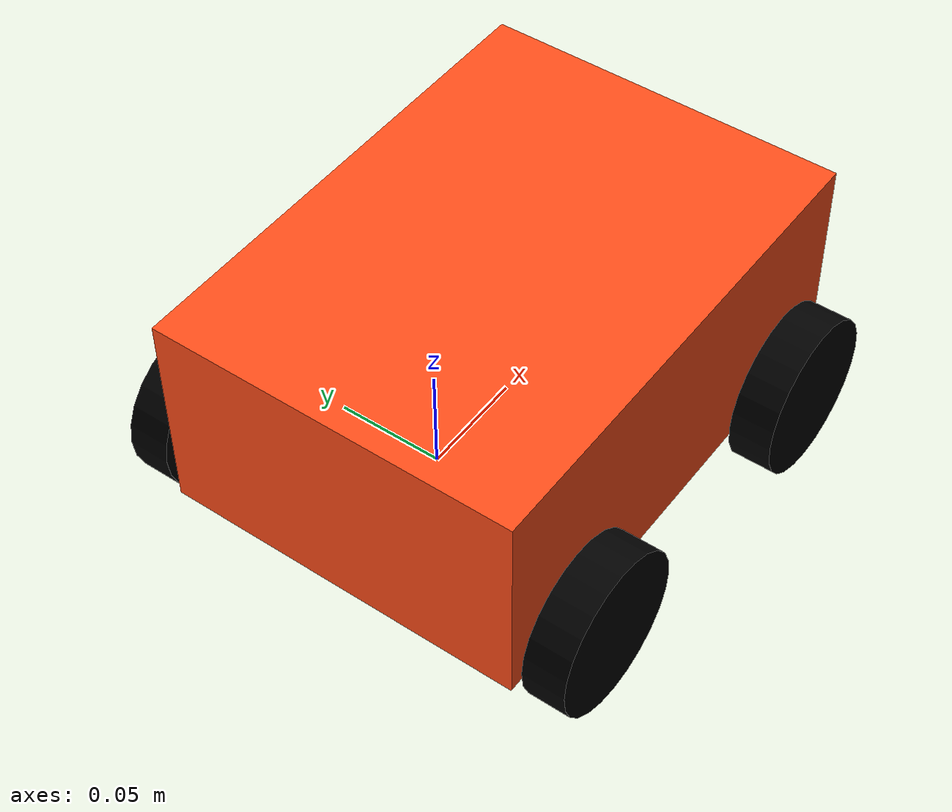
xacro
<?xml version="1.0"?>
<robot xmlns:xacro="http://www.ros.org/wiki/xacro"  name="robot">

    <xacro:include filename="inertial_macros.xacro"/>

    <xacro:property name="chasis_length" value="0.335"/>
    <xacro:property name="chasis_width" value="0.262"/>
    <xacro:property name="chasis_height" value="0.138"/>
    <xacro:property name="chasis_mass" value="1.0"/>
    <xacro:property name="wheel_radius" value="0.033"/>
    <xacro:property name="wheel_thickness" value="0.026"/>
    <xacro:property name="wheel_mass" value="0.05"/>
    <xacro:property name="wheel_offset_x" value="0.226"/>
    <xacro:property name="wheel_offset_y" value="0.0.1485"/>
    <xacro:property name="wheel_offset_z" value="0.01"/>
    <xacro:property name="caster_wheel_radius" value="0.01"/>
    <xacro:property name="caster_wheel_mass" value="0.0.01"/>
    <xacro:property name="caster_wheel_offset_x" value="0.075"/>
    <xacro:property name="caster_wheel_offset_z" value="${wheel_offset_z - wheel_radius + caster_wheel_radius}"/>

    <material name="white">
        <color rgba="1 1 1 1"/>
    </material>

    <material name="orange">
        <color rgba="1 0.3 0.1 1"/>
    </material>

    <material name="blue">
        <color rgba="0.2 0.2 1 1"/>
    </material>

    <material name="red">
        <color rgba="1 0 0 1"/>
    </material>

    <material name="black">
        <color rgba="0 0 0 1"/>
    </material>

    <material name="green">
        <color rgba="0 1 0 1"/>
    </material>

    <!-- BASE LINK  -->
    <link name="base_link">

    </link>

    <!-- BASE FOOTPRINT LINK -->
    <joint name="base_footprint_joint" type="fixed">
        <parent link="base_link"/>
        <child link="base_footprint"/>
        <origin xyz="0 0 0" rpy="0 0 0"/>
    </joint>

    <link name="base_footprint">

    </link>

    <!-- CHASSIS LINK -->

    <joint name="chassis_joint" type="fixed">
        <parent link="base_link"/>
        <child link="chassis"/>
        <origin xyz="-0.1 0 0"/>
    </joint>

    <link name="chassis">
        <visual>
        <origin xyz="0.15 0 0.03424"/>
            <geometry>
                <box size="0.235 0.173 0.101"/>
            </geometry>
            <material name="orange"/>
        </visual>
        <collision>
        <origin xyz="0.15 0 0.03424"/>
            <geometry>
                <box size="0.235 0.173 0.101"/>
            </geometry>
            <material name="orange"/>
        </collision>
        <xacro:inertial_box mass="0.5" x="0.235" y="0.173" z="0.101">
            <origin xyz="0.15 0 0.03424" rpy="0 0 0"/>
        </xacro:inertial_box>
    </link>
    <gazebo reference="chassis">
        <material>Gazebo/Orange</material>
    </gazebo>

    <!-- REAR WHEELS -->
    <!-- LEFT WHEEL LINK -->
    <joint name="left_rear_wheel_joint" type="continuous">
        <parent link="base_link"/>
        <child link="left_rear_wheel"/>
        <origin xyz="-0.03075 0.1015 0" rpy="-${pi/2} 0 0"/>
        <axis xyz = "0 0 1"/>
    </joint>

    <link name="left_rear_wheel">
        <visual>
            <geometry>
                <cylinder radius="0.03725" length="0.02"/>
            </geometry>
            <material name="black"/>
        </visual>
        <collision>
            <geometry>
                 <sphere radius="0.03725" /> <!--length="0.04" for cylinder -->
            </geometry>
            <material name="black"/>
        </collision>
        <xacro:inertial_cylinder mass="0.1" length="0.02" radius="0.03725">
            <origin xyz="0 0 0" rpy="0 0 0"/>
        </xacro:inertial_cylinder>
    </link>
    <gazebo reference="left_rear_wheel">
        <material>Gazebo/Black</material>
    </gazebo>

    <!-- RIGHT WHEEL LINK -->
    <joint name="right_rear_wheel_joint" type="continuous">
        <parent link="base_link"/>
        <child link="right_rear_wheel"/>
        <origin xyz="-0.03075 -0.1015 0" rpy="${pi/2} 0 0"/>
        <axis xyz = "0 0 -1"/>
    </joint>

    <link name="right_rear_wheel">
        <visual>
            <geometry>
                <cylinder radius="0.03725" length="0.02"/>
            </geometry>
            <material name="black"/>
        </visual>
        <collision>
            <geometry>
                <sphere radius="0.03725"/> <!--length="0.04" for cylinder -->
            </geometry>
            <material name="black"/>
        </collision>
        <xacro:inertial_cylinder mass="0.1" length="0.02" radius="0.03725">
            <origin xyz="0 0 0" rpy="0 0 0"/>
        </xacro:inertial_cylinder>
    </link>
    <gazebo reference="right_rear_wheel">
        <material>Gazebo/Black</material>
    </gazebo>

    <!-- FRONT WHEEEELS  -->
    <!-- LEFT WHEEL  -->
    <joint name="left_front_wheel_joint" type="continuous">
        <parent link="base_link"/>
        <child link="left_front_wheel"/>
        <origin xyz="0.12325 0.1015 0" rpy="-${pi/2} 0 0"/>
        <axis xyz = "0 0 1"/>
    </joint>

    <link name="left_front_wheel">
        <visual>
            <geometry>
                <cylinder radius="0.03725" length="0.02"/>
            </geometry>
            <material name="black"/>
        </visual>
        <collision>
            <geometry>
                 <sphere radius="0.03725" /> <!--length="0.04" for cylinder -->
            </geometry>
            <material name="black"/>
        </collision>
        <xacro:inertial_cylinder mass="0.1" length="0.02" radius="0.03725">
            <origin xyz="0 0 0" rpy="0 0 0"/>
        </xacro:inertial_cylinder>
    </link>
    <gazebo reference="left_front_wheel">
        <material>Gazebo/Black</material>
        <mu1 value="0.001"/>
        <mu2 value="0.001"/>
    </gazebo>

    <!-- RIGHT WHEEL LINK -->
    <joint name="right_front_wheel_joint" type="continuous">
        <parent link="base_link"/>
        <child link="right_front_wheel"/>
        <origin xyz="0.12325 -0.1015 0" rpy="${pi/2} 0 0"/>
        <axis xyz = "0 0 -1"/>
    </joint>

    <link name="right_front_wheel">
        <visual>
            <geometry>
                <cylinder radius="0.03725" length="0.02"/>
            </geometry>
            <material name="black"/>
        </visual>
        <collision>
            <geometry>
                <sphere radius="0.03725"/> <!--length="0.04" for cylinder -->
            </geometry>
            <material name="black"/>
        </collision>
        <xacro:inertial_cylinder mass="0.1" length="0.02" radius="0.03725">
            <origin xyz="0 0 0" rpy="0 0 0"/>
        </xacro:inertial_cylinder>
    </link>
    <gazebo reference="right_front_wheel">
        <material>Gazebo/Black</material>
        <mu1 value="0.001"/>
        <mu2 value="0.001"/>
    </gazebo>

</robot>
